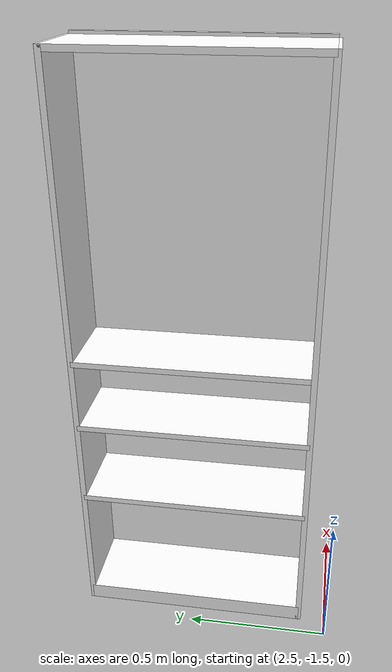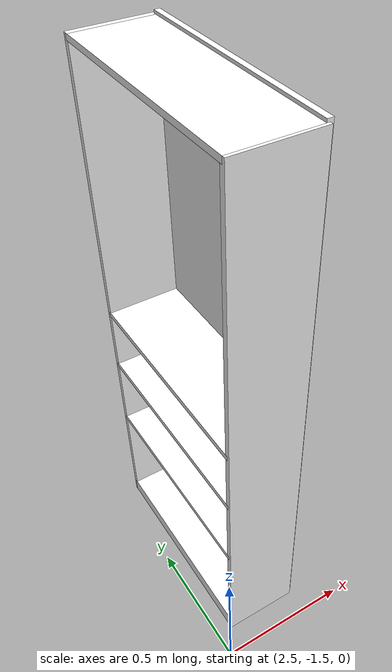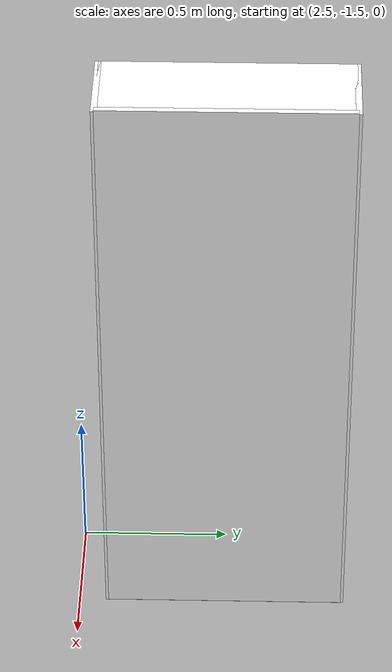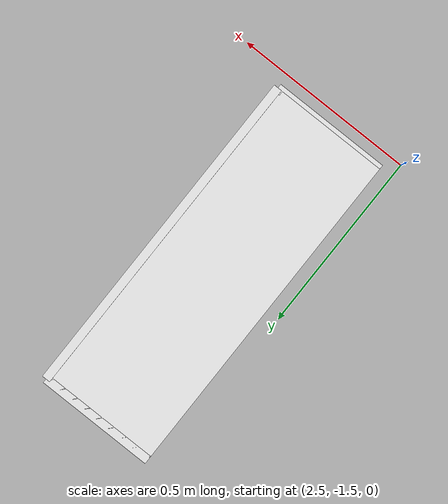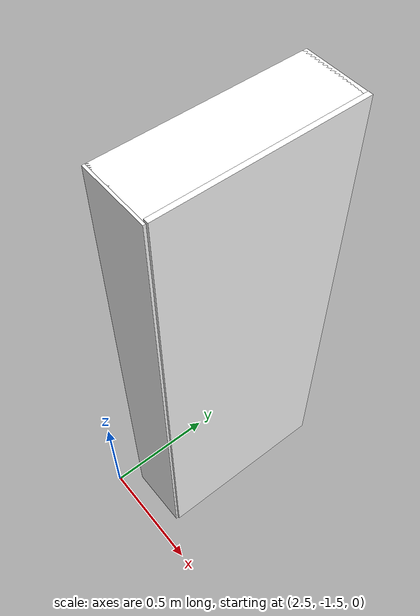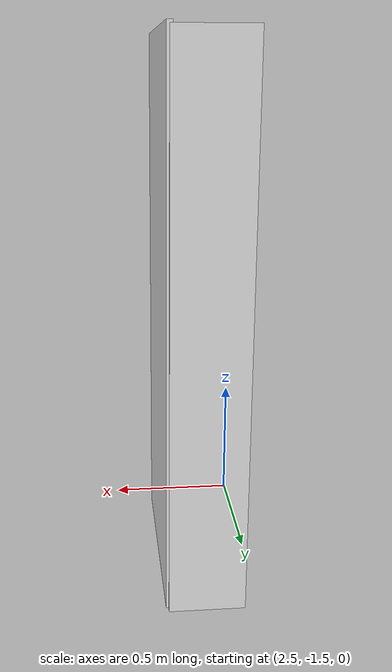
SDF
<?xml version="1.0" ?>
<!-- |    This document was autogenerated by xacro from /home/rs36/catkin_ws/src/tmc_wrs_gazebo_world/worlds/wrs2020.world.xacro | -->
<!-- |    EDITING THIS FILE BY HAND IS NOT RECOMMENDED                                 | -->
<sdf version="1.6" xmlns:xacro="http://www.ros.org/wiki/xacro">
  <world name="default" xmlns:xacro="http://www.ros.org/wiki/xacro">
    <light name="sun" type="directional">
      <cast_shadows>1</cast_shadows>
      <pose frame="">0 0 10 0 -0 0</pose>
      <diffuse>0.8 0.8 0.8 1</diffuse>
      <specular>0.2 0.2 0.2 1</specular>
      <attenuation>
        <range>1000</range>
        <constant>0.9</constant>
        <linear>0.01</linear>
        <quadratic>0.001</quadratic>
      </attenuation>
      <direction>-0.5 0.1 -0.9</direction>
    </light>
    <gravity>0 0 -9.8</gravity>
    <physics type="ode">
    </physics>
    <scene>
      <ambient>0.4 0.4 0.4 1</ambient>
      <background>0.7 0.7 0.7 1</background>
    </scene>
    <include>
      <name>wrc_bookshelf</name>
      <uri>model://wrc_bookshelf</uri>
      <static>1</static>
      <pose frame="">2.7 -1 0 0 -0 -1.57</pose>
    </include>
  </world>
</sdf>

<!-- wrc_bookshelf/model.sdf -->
<sdf version="1.5">
  <model name="wrc_bookshelf">
    <static>true</static>
    <link name="link">
      <inertial>
        <mass>1.0</mass>
      </inertial>
      <collision name="back">
        <pose>0 0.14 1.02 0 0 0</pose>
        <geometry>
          <box>
            <size>0.8 0.02 2.02</size>
          </box>
        </geometry>
      </collision>
      <visual name="back_v">
        <pose>0 0.14 1.02 0 0 0</pose>
        <geometry>
          <box>
            <size>0.8 0.02 2.02</size>
          </box>
        </geometry>
        <material>
          <ambient>1 1 1 1</ambient>
          <diffuse>1 1 1 1</diffuse>
        </material>
      </visual>
      <collision name="left_side">
        <pose>0.4 0 1.01 0 0 0</pose>
        <geometry>
          <box>
            <size>0.02 0.28 2.02</size>
          </box>
        </geometry>
      </collision>
      <visual name="left_side_v">
        <pose>0.4 0 1.01 0 0 0</pose>
        <geometry>
          <box>
            <size>0.02 0.28 2.02</size>
          </box>
        </geometry>
        <material>
          <ambient>1 1 1 1</ambient>
          <diffuse>1 1 1 1</diffuse>
        </material>
      </visual>
      <collision name="right_side">
        <pose>-0.4 0 1.01 0 0 0</pose>
        <geometry>
          <box>
            <size>0.02 0.28 2.02</size>
          </box>
        </geometry>
      </collision>
      <visual name="right_side_v">
        <pose>-0.4 0 1.01 0 0 0</pose>
        <geometry>
          <box>
            <size>0.02 0.28 2.02</size>
          </box>
        </geometry>
        <material>
          <ambient>1 1 1 1</ambient>
          <diffuse>1 1 1 1</diffuse>
        </material>
      </visual>
      <collision name="bottom">
        <pose>0 0 0.03 0 0 0</pose>
        <geometry>
          <box>
            <size>0.8 0.28 0.06</size>
          </box>
        </geometry>
      </collision>
      <visual name="bottom_v">
        <pose>0 0 0.03 0 0 0</pose>
        <geometry>
          <box>
            <size>0.8 0.28 0.06</size>
          </box>
        </geometry>
        <material>
          <ambient>1 1 1 1</ambient>
          <diffuse>1 1 1 1</diffuse>
        </material>
      </visual>
      <collision name="top">
        <pose>0 0 2.01 0 0 0</pose>
        <geometry>
          <box>
            <size>0.8 0.28 0.02</size>
          </box>
        </geometry>
      </collision>
      <visual name="top_v">
        <pose>0 0 2.01 0 0 0</pose>
        <geometry>
          <box>
            <size>0.8 0.28 0.02</size>
          </box>
        </geometry>
        <material>
          <ambient>1 1 1 1</ambient>
          <diffuse>1 1 1 1</diffuse>
        </material>
      </visual>
      <collision name="slit1">
        <pose>0 0 0.49 0 0 0</pose>
        <geometry>
          <box>
            <size>0.8 0.28 0.02</size>
          </box>
        </geometry>
      </collision>
      <visual name="slit1_v">
        <pose>0 0 0.49 0 0 0</pose>
        <geometry>
          <box>
            <size>0.8 0.28 0.02</size>
          </box>
        </geometry>
        <material>
          <ambient>1 1 1 1</ambient>
          <diffuse>1 1 1 1</diffuse>
        </material>
      </visual>
      <collision name="slit2">
        <pose>0 0 0.79 0 0 0</pose>
        <geometry>
          <box>
            <size>0.8 0.28 0.02</size>
          </box>
        </geometry>
      </collision>
      <visual name="slit2_v">
        <pose>0 0 0.79 0 0 0</pose>
        <geometry>
          <box>
            <size>0.8 0.28 0.02</size>
          </box>
        </geometry>
        <material>
          <ambient>1 1 1 1</ambient>
          <diffuse>1 1 1 1</diffuse>
        </material>
      </visual>
      <collision name="slit3">
        <pose>0 0 1.04 0 0 0</pose>
        <geometry>
          <box>
            <size>0.8 0.28 0.02</size>
          </box>
        </geometry>
      </collision>
      <visual name="slit3_v">
        <pose>0 0 1.04 0 0 0</pose>
        <geometry>
          <box>
            <size>0.8 0.28 0.02</size>
          </box>
        </geometry>
        <material>
          <ambient>1 1 1 1</ambient>
          <diffuse>1 1 1 1</diffuse>
        </material>
      </visual>
    </link>
  </model>
</sdf>
